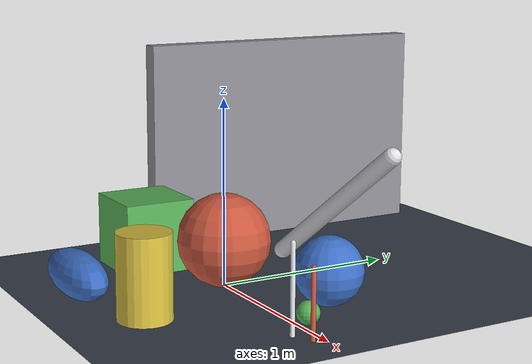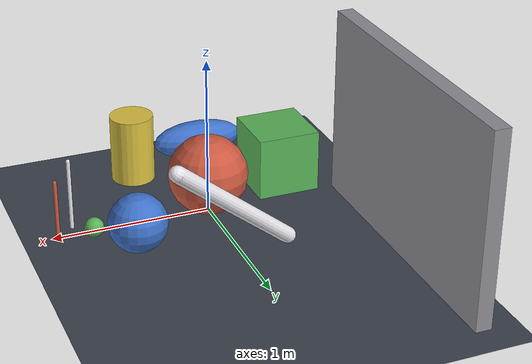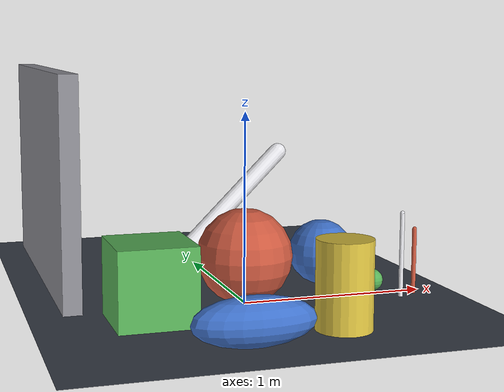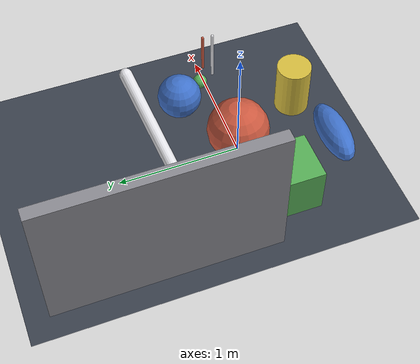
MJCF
<mujoco model="parity_scene">
  <compiler angle="degree" autolimits="true"/>

  <visual>
    <headlight ambient="0.2 0.2 0.2" diffuse="0.4 0.4 0.4" specular="0.5 0.5 0.5"/>
    <quality shadowsize="4096" numslices="28" numstacks="16"/>
    <map znear="0.02" zfar="60" shadowclip="1.5" shadowscale="0.7"/>
  </visual>

  <asset>
    <texture name="grid" type="2d" builtin="checker" width="512" height="512"
             rgb1="0.16 0.18 0.22" rgb2="0.30 0.33 0.38"/>
    <material name="grid" texture="grid" texrepeat="1 1" texuniform="true" reflectance="0.1"/>

    <material name="wall" rgba="0.55 0.55 0.58 1" specular="0.15" shininess="0.2"/>
    <material name="matte" rgba="0.80 0.35 0.25 1" specular="0.05" shininess="0.1"/>
    <material name="glossy" rgba="0.25 0.45 0.80 1" specular="0.9" shininess="0.9"/>
    <material name="mid" rgba="0.35 0.70 0.35 1" specular="0.5" shininess="0.5"/>
    <material name="glow" rgba="0.85 0.75 0.25 1" emission="0.4" specular="0.3" shininess="0.4"/>
    <material name="thin" rgba="0.90 0.90 0.92 1" specular="0.7" shininess="0.8"/>
  </asset>

  <worldbody>

    <light name="sun" type="directional" pos="2.5 -3.5 5" dir="-0.4 0.55 -1"
           diffuse="0.75 0.75 0.72" specular="0.3 0.3 0.3" castshadow="true"/>

    <geom name="floor" type="plane" size="0 0 0.05" material="grid"/>

    <geom name="wall" type="box" pos="-0.9 0.9 0.6" size="0.05 0.9 0.6" material="wall"/>

    <geom name="sphere_matte" type="sphere" pos="0.0 0.0 0.25" size="0.25" material="matte"/>
    <geom name="sphere_glossy" type="sphere" pos="0.55 0.30 0.18" size="0.18" material="glossy"/>
    <geom name="box_mid" type="box" pos="-0.55 -0.20 0.20" size="0.20 0.20 0.20" material="mid"/>
    <geom name="cyl_glow" type="cylinder" pos="0.30 -0.60 0.22" size="0.14 0.22" material="glow"/>
    <geom name="cap_thin" type="capsule" fromto="-0.30 0.55 0.05 0.45 0.75 0.70" size="0.05"
          material="thin"/>
    <geom name="ellip" type="ellipsoid" pos="-0.20 -0.75 0.12" size="0.30 0.12 0.12"
          material="glossy"/>
    <geom name="pin_a" type="capsule" fromto="0.85 -0.10 0 0.85 -0.10 0.45" size="0.012"
          material="thin"/>
    <geom name="pin_b" type="capsule" fromto="0.95 -0.05 0 0.95 -0.05 0.35" size="0.012"
          material="matte"/>
    <geom name="grain" type="sphere" pos="0.75 0.05 0.06" size="0.06" material="mid"/>

    <camera name="p0_overview" pos="2.20 -2.40 1.70" xyaxes="0.74 0.68 0 -0.30 0.32 0.90"/>
    <camera name="p1_close" pos="0.95 -1.05 0.55" xyaxes="0.74 0.68 0 -0.13 0.14 0.98"/>
    <camera name="p2_low" pos="1.80 -0.20 0.16" xyaxes="0.11 0.99 0 -0.05 0.01 1.00"/>
    <camera name="p3_top" pos="0.10 -0.30 3.20" xyaxes="1 0 0 0 1 0"/>
    <camera name="p4_side" pos="-2.60 0.30 0.90" xyaxes="0 -1 0 0.32 0 0.95"/>
  </worldbody>
</mujoco>
